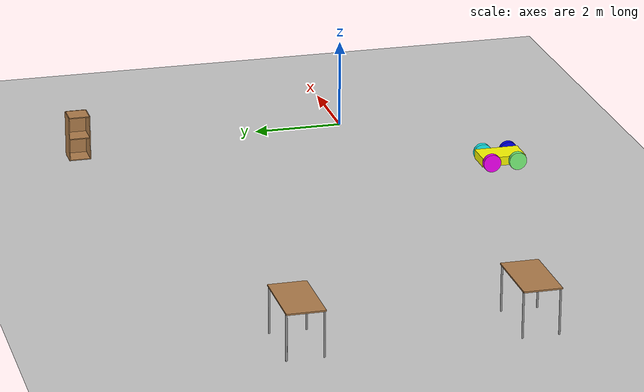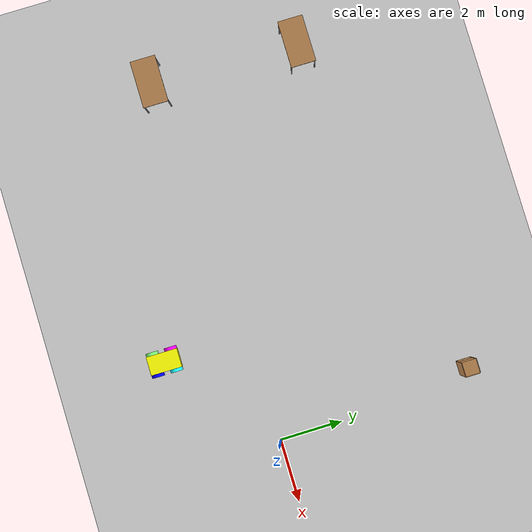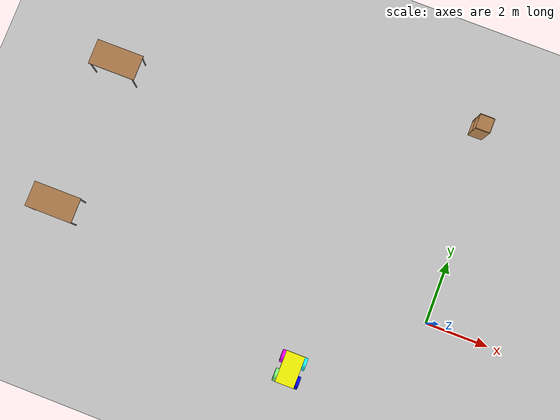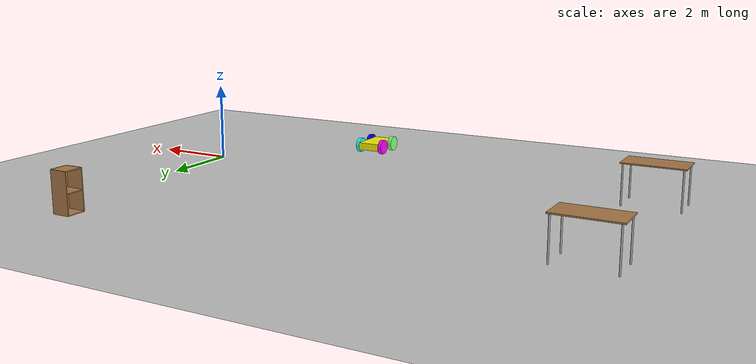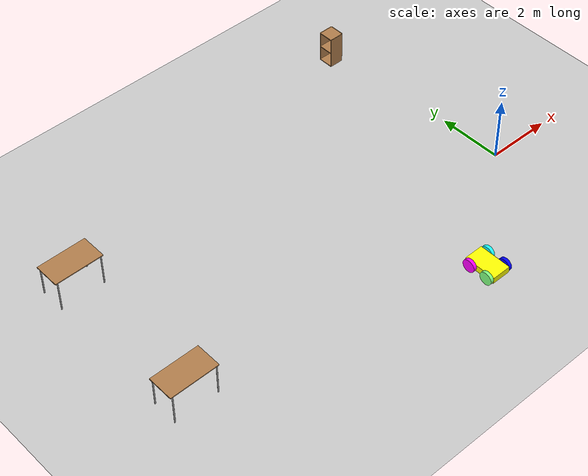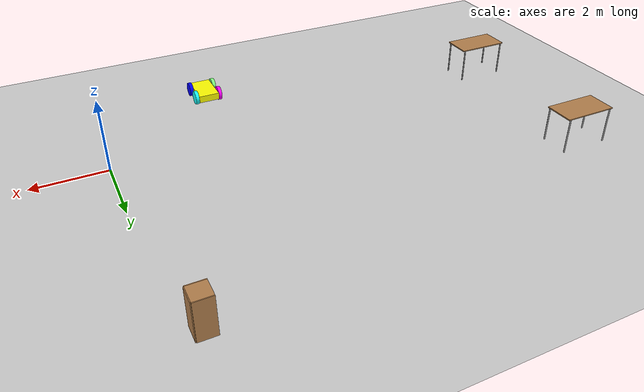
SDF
<sdf version="1.6">
 <world name="default">
  <model name="ground_plane">
   <static>1</static>
   <link name="link">
    <collision name="collision">
     <geometry><plane><normal>0 0 1</normal><size>100 100</size></plane></geometry>
     <surface>
      <contact><collide_bitmask>65535</collide_bitmask></contact>
      <friction><ode><mu>100</mu><mu2>50</mu2></ode></friction>
     </surface>
    </collision>
    <visual name="visual">
     <cast_shadows>0</cast_shadows>
     <geometry><plane><normal>0 0 1</normal><size>100 100</size></plane></geometry>
     <material>
      <script><uri>file://media/materials/scripts/gazebo.material</uri><name>Gazebo/Grey</name></script>
     </material>
    </visual>
   </link>
  </model>
  <model name="cabinet">
   <static>1</static>
   <link name="cabinet_bottom_plate">
    <inertial>
     <pose>0 0 -1 0 -0 0</pose>
     <inertia><ixx>2.05</ixx><ixy>0</ixy><ixz>0</ixz><iyy>2.05</iyy><iyz>0</iyz><izz>2.05</izz></inertia>
     <mass>25</mass>
    </inertial>
    <collision name="cabinet_bottom_plate_geom">
     <pose>0 0 0.01 0 -0 0</pose>
     <geometry><box><size>0.45 0.45 0.02</size></box></geometry>
    </collision>
    <visual name="cabinet_bottom_plate_geom_visual">
     <pose>0 0 0.01 0 -0 0</pose>
     <geometry><box><size>0.45 0.45 0.02</size></box></geometry>
     <material>
      <script><uri>file://media/materials/scripts/gazebo.material</uri><name>Gazebo/Wood</name></script>
     </material>
    </visual>
    <collision name="cabinet_bottom_plate_geom_cabinet_back_plate">
     <pose>0.235 0 0.51 0 -0 0</pose>
     <geometry><box><size>0.02 0.45 1.02</size></box></geometry>
    </collision>
    <visual name="cabinet_bottom_plate_geom_cabinet_back_plate_visual">
     <pose>0.235 0 0.51 0 -0 0</pose>
     <geometry><box><size>0.02 0.45 1.02</size></box></geometry>
     <material>
      <script><uri>file://media/materials/scripts/gazebo.material</uri><name>Gazebo/Wood</name></script>
     </material>
    </visual>
    <collision name="cabinet_bottom_plate_geom_cabinet_left_plate">
     <pose>0 0.235 0.51 0 -0 0</pose>
     <geometry><box><size>0.45 0.02 1.02</size></box></geometry>
    </collision>
    <visual name="cabinet_bottom_plate_geom_cabinet_left_plate_visual">
     <pose>0 0.235 0.51 0 -0 0</pose>
     <geometry><box><size>0.45 0.02 1.02</size></box></geometry>
     <material>
      <script><uri>file://media/materials/scripts/gazebo.material</uri><name>Gazebo/Wood</name></script>
     </material>
    </visual>
    <collision name="cabinet_bottom_plate_geom_cabinet_middle_plate">
     <pose>0 0 0.51 0 -0 0</pose>
     <geometry><box><size>0.45 0.45 0.02</size></box></geometry>
    </collision>
    <visual name="cabinet_bottom_plate_geom_cabinet_middle_plate_visual">
     <pose>0 0 0.51 0 -0 0</pose>
     <geometry><box><size>0.45 0.45 0.02</size></box></geometry>
     <material>
      <script><uri>file://media/materials/scripts/gazebo.material</uri><name>Gazebo/Wood</name></script>
     </material>
    </visual>
    <collision name="cabinet_bottom_plate_geom_cabinet_right_plate">
     <pose>0 -0.235 0.51 0 -0 0</pose>
     <geometry><box><size>0.45 0.02 1.02</size></box></geometry>
    </collision>
    <visual name="cabinet_bottom_plate_geom_cabinet_right_plate_visual">
     <pose>0 -0.235 0.51 0 -0 0</pose>
     <geometry><box><size>0.45 0.02 1.02</size></box></geometry>
     <material>
      <script><uri>file://media/materials/scripts/gazebo.material</uri><name>Gazebo/Wood</name></script>
     </material>
    </visual>
    <collision name="cabinet_bottom_plate_geom_cabinet_top_plate">
     <pose>0 0 1.01 0 -0 0</pose>
     <geometry><box><size>0.45 0.45 0.02</size></box></geometry>
    </collision>
    <visual name="cabinet_bottom_plate_geom_cabinet_top_plate_visual">
     <pose>0 0 1.01 0 -0 0</pose>
     <geometry><box><size>0.45 0.45 0.02</size></box></geometry>
     <material>
      <script><uri>file://media/materials/scripts/gazebo.material</uri><name>Gazebo/Wood</name></script>
     </material>
    </visual>
   </link>
   <pose>-0.545344 6.23489 0 0 -0 0</pose>
  </model>
  <model name="table">
   <static>1</static>
   <link name="link">
    <collision name="surface">
     <pose>0 0 1 0 -0 0</pose>
     <geometry><box><size>1.5 0.8 0.03</size></box></geometry>
     <surface><friction><ode><mu>0.6</mu><mu2>0.6</mu2></ode></friction></surface>
    </collision>
    <visual name="visual1">
     <pose>0 0 1 0 -0 0</pose>
     <geometry><box><size>1.5 0.8 0.03</size></box></geometry>
     <material>
      <script><uri>file://media/materials/scripts/gazebo.material</uri><name>Gazebo/Wood</name></script>
     </material>
    </visual>
    <collision name="front_left_leg">
     <pose>0.68 0.38 0.5 0 -0 0</pose>
     <geometry><cylinder><radius>0.02</radius><length>1</length></cylinder></geometry>
    </collision>
    <visual name="front_left_leg">
     <pose>0.68 0.38 0.5 0 -0 0</pose>
     <geometry><cylinder><radius>0.02</radius><length>1</length></cylinder></geometry>
     <material>
      <script><uri>file://media/materials/scripts/gazebo.material</uri><name>Gazebo/Grey</name></script>
     </material>
    </visual>
    <collision name="front_right_leg">
     <pose>0.68 -0.38 0.5 0 -0 0</pose>
     <geometry><cylinder><radius>0.02</radius><length>1</length></cylinder></geometry>
    </collision>
    <visual name="front_right_leg">
     <pose>0.68 -0.38 0.5 0 -0 0</pose>
     <geometry><cylinder><radius>0.02</radius><length>1</length></cylinder></geometry>
     <material>
      <script><uri>file://media/materials/scripts/gazebo.material</uri><name>Gazebo/Grey</name></script>
     </material>
    </visual>
    <collision name="back_right_leg">
     <pose>-0.68 -0.38 0.5 0 -0 0</pose>
     <geometry><cylinder><radius>0.02</radius><length>1</length></cylinder></geometry>
    </collision>
    <visual name="back_right_leg">
     <pose>-0.68 -0.38 0.5 0 -0 0</pose>
     <geometry><cylinder><radius>0.02</radius><length>1</length></cylinder></geometry>
     <material>
      <script><uri>file://media/materials/scripts/gazebo.material</uri><name>Gazebo/Grey</name></script>
     </material>
    </visual>
    <collision name="back_left_leg">
     <pose>-0.68 0.38 0.5 0 -0 0</pose>
     <geometry><cylinder><radius>0.02</radius><length>1</length></cylinder></geometry>
    </collision>
    <visual name="back_left_leg">
     <pose>-0.68 0.38 0.5 0 -0 0</pose>
     <geometry><cylinder><radius>0.02</radius><length>1</length></cylinder></geometry>
     <material>
      <script><uri>file://media/materials/scripts/gazebo.material</uri><name>Gazebo/Grey</name></script>
     </material>
    </visual>
   </link>
   <pose>-11.7268 4.05281 0 0 -0 0</pose>
  </model>
  <model name="table_0">
   <static>1</static>
   <link name="link">
    <collision name="surface">
     <pose>0 0 1 0 -0 0</pose>
     <geometry><box><size>1.5 0.8 0.03</size></box></geometry>
     <surface><friction><ode><mu>0.6</mu><mu2>0.6</mu2></ode></friction></surface>
    </collision>
    <visual name="visual1">
     <pose>0 0 1 0 -0 0</pose>
     <geometry><box><size>1.5 0.8 0.03</size></box></geometry>
     <material>
      <script><uri>file://media/materials/scripts/gazebo.material</uri><name>Gazebo/Wood</name></script>
     </material>
    </visual>
    <collision name="front_left_leg">
     <pose>0.68 0.38 0.5 0 -0 0</pose>
     <geometry><cylinder><radius>0.02</radius><length>1</length></cylinder></geometry>
    </collision>
    <visual name="front_left_leg">
     <pose>0.68 0.38 0.5 0 -0 0</pose>
     <geometry><cylinder><radius>0.02</radius><length>1</length></cylinder></geometry>
     <material>
      <script><uri>file://media/materials/scripts/gazebo.material</uri><name>Gazebo/Grey</name></script>
     </material>
    </visual>
    <collision name="front_right_leg">
     <pose>0.68 -0.38 0.5 0 -0 0</pose>
     <geometry><cylinder><radius>0.02</radius><length>1</length></cylinder></geometry>
    </collision>
    <visual name="front_right_leg">
     <pose>0.68 -0.38 0.5 0 -0 0</pose>
     <geometry><cylinder><radius>0.02</radius><length>1</length></cylinder></geometry>
     <material>
      <script><uri>file://media/materials/scripts/gazebo.material</uri><name>Gazebo/Grey</name></script>
     </material>
    </visual>
    <collision name="back_right_leg">
     <pose>-0.68 -0.38 0.5 0 -0 0</pose>
     <geometry><cylinder><radius>0.02</radius><length>1</length></cylinder></geometry>
    </collision>
    <visual name="back_right_leg">
     <pose>-0.68 -0.38 0.5 0 -0 0</pose>
     <geometry><cylinder><radius>0.02</radius><length>1</length></cylinder></geometry>
     <material>
      <script><uri>file://media/materials/scripts/gazebo.material</uri><name>Gazebo/Grey</name></script>
     </material>
    </visual>
    <collision name="back_left_leg">
     <pose>-0.68 0.38 0.5 0 -0 0</pose>
     <geometry><cylinder><radius>0.02</radius><length>1</length></cylinder></geometry>
    </collision>
    <visual name="back_left_leg">
     <pose>-0.68 0.38 0.5 0 -0 0</pose>
     <geometry><cylinder><radius>0.02</radius><length>1</length></cylinder></geometry>
     <material>
      <script><uri>file://media/materials/scripts/gazebo.material</uri><name>Gazebo/Grey</name></script>
     </material>
    </visual>
   </link>
   <pose>-11.8347 -0.684355 0 0 -0 0</pose>
  </model>
  <model name="myrobot">
   <link name="link_0">
    <inertial>
     <mass>1</mass>
     <inertia>
      <ixx>0.166667</ixx>
      <ixy>0</ixy>
      <ixz>0</ixz>
      <iyy>0.166667</iyy>
      <iyz>0</iyz>
      <izz>0.166667</izz>
     </inertia>
    </inertial>
    <visual name="visual">
     <geometry><box><size>0.6 1 0.2</size></box></geometry>
     <material>
      <lighting>1</lighting>
      <script><uri>file://media/materials/scripts/gazebo.material</uri><name>Gazebo/Grey</name></script>
      <shader type="pixel"><normal_map>__default__</normal_map></shader>
      <ambient>1 1 0 1</ambient>
      <diffuse>1 1 0 1</diffuse>
      <specular>1 1 0 1</specular>
      <emissive>1 1 0 1</emissive>
     </material>
    </visual>
    <collision name="collision">
     <geometry><box><size>0.6 1 0.2</size></box></geometry>
     <surface>
      <friction>
       <ode><mu>1</mu><mu2>1</mu2><fdir1>0 0 0</fdir1><slip1>0</slip1><slip2>0</slip2></ode>
       <torsional>
        <coefficient>1</coefficient>
        <patch_radius>0</patch_radius>
        <surface_radius>0</surface_radius>
        <use_patch_radius>1</use_patch_radius>
        <ode><slip>0</slip></ode>
       </torsional>
      </friction>
      <bounce><restitution_coefficient>0</restitution_coefficient><threshold>1e+06</threshold></bounce>
      <contact>
       <collide_without_contact>0</collide_without_contact>
       <collide_without_contact_bitmask>1</collide_without_contact_bitmask>
       <collide_bitmask>1</collide_bitmask>
       <ode>
        <soft_cfm>0</soft_cfm>
        <soft_erp>0.2</soft_erp>
        <kp>1e+13</kp>
        <kd>1</kd>
        <max_vel>0.01</max_vel>
        <min_depth>0</min_depth>
       </ode>
       <bullet>
        <split_impulse>1</split_impulse>
        <split_impulse_penetration_threshold>-0.01</split_impulse_penetration_threshold>
        <soft_cfm>0</soft_cfm>
        <soft_erp>0.2</soft_erp>
        <kp>1e+13</kp>
        <kd>1</kd>
       </bullet>
      </contact>
     </surface>
    </collision>
   </link>
   <link name="link_1">
    <pose>0.350019 0.3 0 0 -0 0</pose>
    <inertial>
     <mass>1</mass>
     <inertia><ixx>0.145833</ixx><ixy>0</ixy><ixz>0</ixz><iyy>0.145833</iyy><iyz>0</iyz><izz>0.125</izz></inertia>
    </inertial>
    <visual name="visual">
     <pose>0 0 0 0 1.5707 0</pose>
     <geometry><cylinder><radius>0.2</radius><length>0.1</length></cylinder></geometry>
     <material>
      <lighting>1</lighting>
      <script><uri>file://media/materials/scripts/gazebo.material</uri><name>Gazebo/Grey</name></script>
      <shader type="pixel"><normal_map>__default__</normal_map></shader>
      <ambient>0.1 1 1 1</ambient>
      <diffuse>1 1 1 1</diffuse>
      <specular>1 1 1 1</specular>
      <emissive>0 0 0 1</emissive>
     </material>
    </visual>
    <collision name="collision">
     <pose>0 0 0 0 1.5707 0</pose>
     <geometry><cylinder><radius>0.2</radius><length>0.1</length></cylinder></geometry>
     <surface>
      <friction>
       <ode><mu>1</mu><mu2>1</mu2><fdir1>0 0 0</fdir1><slip1>0</slip1><slip2>0</slip2></ode>
       <torsional>
        <coefficient>1</coefficient>
        <patch_radius>0</patch_radius>
        <surface_radius>0</surface_radius>
        <use_patch_radius>1</use_patch_radius>
        <ode><slip>0</slip></ode>
       </torsional>
      </friction>
      <bounce><restitution_coefficient>0</restitution_coefficient><threshold>1e+06</threshold></bounce>
      <contact>
       <collide_without_contact>0</collide_without_contact>
       <collide_without_contact_bitmask>1</collide_without_contact_bitmask>
       <collide_bitmask>1</collide_bitmask>
       <ode>
        <soft_cfm>0</soft_cfm>
        <soft_erp>0.2</soft_erp>
        <kp>1e+13</kp>
        <kd>1</kd>
        <max_vel>0.01</max_vel>
        <min_depth>0</min_depth>
       </ode>
       <bullet>
        <split_impulse>1</split_impulse>
        <split_impulse_penetration_threshold>-0.01</split_impulse_penetration_threshold>
        <soft_cfm>0</soft_cfm>
        <soft_erp>0.2</soft_erp>
        <kp>1e+13</kp>
        <kd>1</kd>
       </bullet>
      </contact>
     </surface>
    </collision>
   </link>
   <link name="link_1_clone">
    <pose>0.350019 -0.3 0 0 -0 0</pose>
    <inertial>
     <mass>1</mass>
     <inertia><ixx>0.145833</ixx><ixy>0</ixy><ixz>0</ixz><iyy>0.145833</iyy><iyz>0</iyz><izz>0.125</izz></inertia>
    </inertial>
    <visual name="visual">
     <pose>0 0 0 0 1.5707 0</pose>
     <geometry><cylinder><radius>0.2</radius><length>0.1</length></cylinder></geometry>
     <material>
      <lighting>1</lighting>
      <script><uri>file://media/materials/scripts/gazebo.material</uri><name>Gazebo/Grey</name></script>
      <shader type="pixel"><normal_map>__default__</normal_map></shader>
      <ambient>0 0 1 1</ambient>
      <diffuse>0 0 1 1</diffuse>
      <specular>0 0 1 1</specular>
      <emissive>0 0 1 1</emissive>
     </material>
    </visual>
    <collision name="collision">
     <pose>0 0 0 0 1.5707 0</pose>
     <geometry><cylinder><radius>0.2</radius><length>0.1</length></cylinder></geometry>
     <surface>
      <friction>
       <ode><mu>1</mu><mu2>1</mu2><fdir1>0 0 0</fdir1><slip1>0</slip1><slip2>0</slip2></ode>
       <torsional>
        <coefficient>1</coefficient>
        <patch_radius>0</patch_radius>
        <surface_radius>0</surface_radius>
        <use_patch_radius>1</use_patch_radius>
        <ode><slip>0</slip></ode>
       </torsional>
      </friction>
      <bounce><restitution_coefficient>0</restitution_coefficient><threshold>1e+06</threshold></bounce>
      <contact>
       <collide_without_contact>0</collide_without_contact>
       <collide_without_contact_bitmask>1</collide_without_contact_bitmask>
       <collide_bitmask>1</collide_bitmask>
       <ode>
        <soft_cfm>0</soft_cfm>
        <soft_erp>0.2</soft_erp>
        <kp>1e+13</kp>
        <kd>1</kd>
        <max_vel>0.01</max_vel>
        <min_depth>0</min_depth>
       </ode>
       <bullet>
        <split_impulse>1</split_impulse>
        <split_impulse_penetration_threshold>-0.01</split_impulse_penetration_threshold>
        <soft_cfm>0</soft_cfm>
        <soft_erp>0.2</soft_erp>
        <kp>1e+13</kp>
        <kd>1</kd>
       </bullet>
      </contact>
     </surface>
    </collision>
   </link>
   <link name="link_1_clone_0">
    <pose>-0.350019 0.3 0 0 -0 0</pose>
    <inertial>
     <mass>1</mass>
     <inertia><ixx>0.145833</ixx><ixy>0</ixy><ixz>0</ixz><iyy>0.145833</iyy><iyz>0</iyz><izz>0.125</izz></inertia>
    </inertial>
    <visual name="visual">
     <pose>0 0 0 0 1.5707 0</pose>
     <geometry><cylinder><radius>0.2</radius><length>0.1</length></cylinder></geometry>
     <material>
      <lighting>1</lighting>
      <script><uri>file://media/materials/scripts/gazebo.material</uri><name>Gazebo/Grey</name></script>
      <shader type="pixel"><normal_map>__default__</normal_map></shader>
      <ambient>1 0 1 0</ambient>
      <diffuse>1 0 1 0</diffuse>
      <specular>1 0 1 0</specular>
      <emissive>0 0 0 1</emissive>
     </material>
    </visual>
    <collision name="collision">
     <pose>0 0 0 0 1.5707 0</pose>
     <geometry><cylinder><radius>0.2</radius><length>0.1</length></cylinder></geometry>
     <surface>
      <friction>
       <ode><mu>1</mu><mu2>1</mu2><fdir1>0 0 0</fdir1><slip1>0</slip1><slip2>0</slip2></ode>
       <torsional>
        <coefficient>1</coefficient>
        <patch_radius>0</patch_radius>
        <surface_radius>0</surface_radius>
        <use_patch_radius>1</use_patch_radius>
        <ode><slip>0</slip></ode>
       </torsional>
      </friction>
      <bounce><restitution_coefficient>0</restitution_coefficient><threshold>1e+06</threshold></bounce>
      <contact>
       <collide_without_contact>0</collide_without_contact>
       <collide_without_contact_bitmask>1</collide_without_contact_bitmask>
       <collide_bitmask>1</collide_bitmask>
       <ode>
        <soft_cfm>0</soft_cfm>
        <soft_erp>0.2</soft_erp>
        <kp>1e+13</kp>
        <kd>1</kd>
        <max_vel>0.01</max_vel>
        <min_depth>0</min_depth>
       </ode>
       <bullet>
        <split_impulse>1</split_impulse>
        <split_impulse_penetration_threshold>-0.01</split_impulse_penetration_threshold>
        <soft_cfm>0</soft_cfm>
        <soft_erp>0.2</soft_erp>
        <kp>1e+13</kp>
        <kd>1</kd>
       </bullet>
      </contact>
     </surface>
    </collision>
   </link>
   <link name="link_1_clone_0_clone">
    <pose>-0.350019 -0.3 0 0 -0 0</pose>
    <inertial>
     <mass>1</mass>
     <inertia><ixx>0.145833</ixx><ixy>0</ixy><ixz>0</ixz><iyy>0.145833</iyy><iyz>0</iyz><izz>0.125</izz></inertia>
    </inertial>
    <visual name="visual">
     <pose>0 0 0 0 1.5707 0</pose>
     <geometry><cylinder><radius>0.2</radius><length>0.1</length></cylinder></geometry>
     <material>
      <lighting>1</lighting>
      <script><uri>file://media/materials/scripts/gazebo.material</uri><name>Gazebo/Grey</name></script>
      <shader type="pixel"><normal_map>__default__</normal_map></shader>
      <ambient>0.5 1 0.5 1</ambient>
      <diffuse>0.5 1 0.5 1</diffuse>
      <specular>0.5 1 0.5 1</specular>
      <emissive>0.5 1 0.5 1</emissive>
     </material>
    </visual>
    <collision name="collision">
     <pose>0 0 0 0 1.5707 0</pose>
     <geometry><cylinder><radius>0.2</radius><length>0.1</length></cylinder></geometry>
     <surface>
      <friction>
       <ode><mu>1</mu><mu2>1</mu2><fdir1>0 0 0</fdir1><slip1>0</slip1><slip2>0</slip2></ode>
       <torsional>
        <coefficient>1</coefficient>
        <patch_radius>0</patch_radius>
        <surface_radius>0</surface_radius>
        <use_patch_radius>1</use_patch_radius>
        <ode><slip>0</slip></ode>
       </torsional>
      </friction>
      <bounce><restitution_coefficient>0</restitution_coefficient><threshold>1e+06</threshold></bounce>
      <contact>
       <collide_without_contact>0</collide_without_contact>
       <collide_without_contact_bitmask>1</collide_without_contact_bitmask>
       <collide_bitmask>1</collide_bitmask>
       <ode>
        <soft_cfm>0</soft_cfm>
        <soft_erp>0.2</soft_erp>
        <kp>1e+13</kp>
        <kd>1</kd>
        <max_vel>0.01</max_vel>
        <min_depth>0</min_depth>
       </ode>
       <bullet>
        <split_impulse>1</split_impulse>
        <split_impulse_penetration_threshold>-0.01</split_impulse_penetration_threshold>
        <soft_cfm>0</soft_cfm>
        <soft_erp>0.2</soft_erp>
        <kp>1e+13</kp>
        <kd>1</kd>
       </bullet>
      </contact>
     </surface>
    </collision>
   </link>
   <joint name="link_0_JOINT_1" type="revolute">
    <parent>link_0</parent>
    <child>link_1</child>
    <axis>
     <xyz>0 0 1</xyz>
     <use_parent_model_frame>0</use_parent_model_frame>
     <limit>
      <lower>-1.79769e+308</lower>
      <upper>1.79769e+308</upper>
      <effort>-1</effort>
      <velocity>-1</velocity>
     </limit>
     <dynamics>
      <spring_reference>0</spring_reference>
      <spring_stiffness>0</spring_stiffness>
      <damping>0</damping>
      <friction>0</friction>
     </dynamics>
    </axis>
    <physics>
     <ode><limit><cfm>0</cfm><erp>0.2</erp></limit><suspension><cfm>0</cfm><erp>0.2</erp></suspension></ode>
    </physics>
   </joint>
   <joint name="link_0_JOINT_2" type="revolute">
    <parent>link_0</parent>
    <child>link_1_clone</child>
    <axis>
     <xyz>0 0 1</xyz>
     <use_parent_model_frame>0</use_parent_model_frame>
     <limit>
      <lower>-1.79769e+308</lower>
      <upper>1.79769e+308</upper>
      <effort>-1</effort>
      <velocity>-1</velocity>
     </limit>
     <dynamics>
      <spring_reference>0</spring_reference>
      <spring_stiffness>0</spring_stiffness>
      <damping>0</damping>
      <friction>0</friction>
     </dynamics>
    </axis>
    <physics>
     <ode><limit><cfm>0</cfm><erp>0.2</erp></limit><suspension><cfm>0</cfm><erp>0.2</erp></suspension></ode>
    </physics>
   </joint>
   <joint name="link_0_JOINT_3" type="revolute">
    <parent>link_0</parent>
    <child>link_1_clone_0</child>
    <axis>
     <xyz>0 0 1</xyz>
     <use_parent_model_frame>0</use_parent_model_frame>
     <limit>
      <lower>-1.79769e+308</lower>
      <upper>1.79769e+308</upper>
      <effort>-1</effort>
      <velocity>-1</velocity>
     </limit>
     <dynamics>
      <spring_reference>0</spring_reference>
      <spring_stiffness>0</spring_stiffness>
      <damping>0</damping>
      <friction>0</friction>
     </dynamics>
    </axis>
    <physics>
     <ode><limit><cfm>0</cfm><erp>0.2</erp></limit><suspension><cfm>0</cfm><erp>0.2</erp></suspension></ode>
    </physics>
   </joint>
   <joint name="link_0_JOINT_5" type="revolute">
    <parent>link_0</parent>
    <child>link_1_clone_0_clone</child>
    <axis>
     <xyz>0 0 1</xyz>
     <use_parent_model_frame>0</use_parent_model_frame>
     <limit>
      <lower>-1.79769e+308</lower>
      <upper>1.79769e+308</upper>
      <effort>-1</effort>
      <velocity>-1</velocity>
     </limit>
     <dynamics>
      <spring_reference>0</spring_reference>
      <spring_stiffness>0</spring_stiffness>
      <damping>0</damping>
      <friction>0</friction>
     </dynamics>
    </axis>
    <physics>
     <ode><limit><cfm>0</cfm><erp>0.2</erp></limit><suspension><cfm>0</cfm><erp>0.2</erp></suspension></ode>
    </physics>
   </joint>
   <static>0</static>
   <pose>-3.39815 -2.78972 0.2 0 -0 0</pose>
  </model>
 </world>
</sdf>
